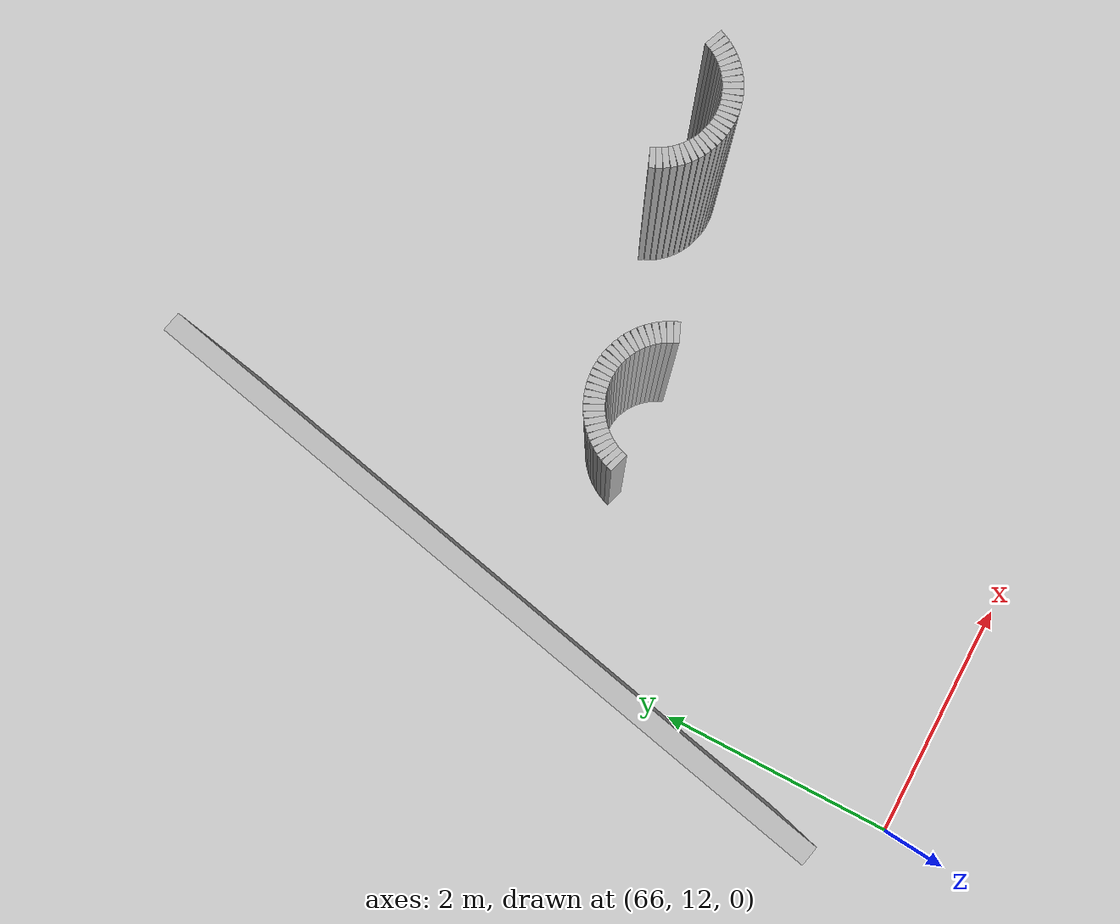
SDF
<sdf version="1.6">
 <model name="sps_1202">
  <static>1</static>
  <allow_auto_disable>0</allow_auto_disable>
  <link name="Wall1943">
   <collision name="collision"><geometry><box><size>0.0452271 0.15 2.5</size></box></geometry></collision>
   <visual name="visual">
    <geometry><box><size>0.0452271 0.15 2.5</size></box></geometry>
    <transparency>0.0</transparency>
   </visual>
   <pose>70.3624 15.9952 1.25 0 0 -1.96559</pose>
  </link>
  <link name="Wall1944">
   <collision name="collision"><geometry><box><size>0.0453724 0.15 2.5</size></box></geometry></collision>
   <visual name="visual">
    <geometry><box><size>0.0453724 0.15 2.5</size></box></geometry>
    <transparency>0.0</transparency>
   </visual>
   <pose>70.3432 15.9542 1.25 0 0 -2.05189</pose>
  </link>
  <link name="Wall1945">
   <collision name="collision"><geometry><box><size>0.0452437 0.15 2.5</size></box></geometry></collision>
   <visual name="visual">
    <geometry><box><size>0.0452437 0.15 2.5</size></box></geometry>
    <transparency>0.0</transparency>
   </visual>
   <pose>70.3205 15.915 1.25 0 0 -2.13597</pose>
  </link>
  <link name="Wall1946">
   <collision name="collision"><geometry><box><size>0.0454753 0.15 2.5</size></box></geometry></collision>
   <visual name="visual">
    <geometry><box><size>0.0454753 0.15 2.5</size></box></geometry>
    <transparency>0.0</transparency>
   </visual>
   <pose>70.2945 15.8779 1.25 0 0 -2.22772</pose>
  </link>
  <link name="Wall1947">
   <collision name="collision"><geometry><box><size>0.0452735 0.15 2.5</size></box></geometry></collision>
   <visual name="visual">
    <geometry><box><size>0.0452735 0.15 2.5</size></box></geometry>
    <transparency>0.0</transparency>
   </visual>
   <pose>70.2654 15.8432 1.25 0 0 -2.31233</pose>
  </link>
  <link name="Wall1948">
   <collision name="collision"><geometry><box><size>0.0454836 0.15 2.5</size></box></geometry></collision>
   <visual name="visual">
    <geometry><box><size>0.0454836 0.15 2.5</size></box></geometry>
    <transparency>0.0</transparency>
   </visual>
   <pose>70.2334 15.8111 1.25 0 0 -2.39701</pose>
  </link>
  <link name="Wall1949">
   <collision name="collision"><geometry><box><size>0.0453153 0.15 2.5</size></box></geometry></collision>
   <visual name="visual">
    <geometry><box><size>0.0453153 0.15 2.5</size></box></geometry>
    <transparency>0.0</transparency>
   </visual>
   <pose>70.1987 15.7819 1.25 0 0 -2.48705</pose>
  </link>
  <link name="Wall1950">
   <collision name="collision"><geometry><box><size>0.0455479 0.15 2.5</size></box></geometry></collision>
   <visual name="visual">
    <geometry><box><size>0.0455479 0.15 2.5</size></box></geometry>
    <transparency>0.0</transparency>
   </visual>
   <pose>70.1615 15.7559 1.25 0 0 -2.57589</pose>
  </link>
  <link name="Wall1951">
   <collision name="collision"><geometry><box><size>0.0452058 0.15 2.5</size></box></geometry></collision>
   <visual name="visual">
    <geometry><box><size>0.0452058 0.15 2.5</size></box></geometry>
    <transparency>0.0</transparency>
   </visual>
   <pose>70.1222 15.7333 1.25 0 0 -2.66466</pose>
  </link>
  <link name="Wall1952">
   <collision name="collision"><geometry><box><size>0.0452834 0.15 2.5</size></box></geometry></collision>
   <visual name="visual">
    <geometry><box><size>0.0452834 0.15 2.5</size></box></geometry>
    <transparency>0.0</transparency>
   </visual>
   <pose>70.0812 15.7142 1.25 0 0 -2.74732</pose>
  </link>
  <link name="Wall1953">
   <collision name="collision"><geometry><box><size>0.0454804 0.15 2.5</size></box></geometry></collision>
   <visual name="visual">
    <geometry><box><size>0.0454804 0.15 2.5</size></box></geometry>
    <transparency>0.0</transparency>
   </visual>
   <pose>70.0386 15.6987 1.25 0 0 -2.83767</pose>
  </link>
  <link name="Wall1954">
   <collision name="collision"><geometry><box><size>0.0452689 0.15 2.5</size></box></geometry></collision>
   <visual name="visual">
    <geometry><box><size>0.0452689 0.15 2.5</size></box></geometry>
    <transparency>0.0</transparency>
   </visual>
   <pose>69.9948 15.687 1.25 0 0 -2.92278</pose>
  </link>
  <link name="Wall1955">
   <collision name="collision"><geometry><box><size>0.0454394 0.15 2.5</size></box></geometry></collision>
   <visual name="visual">
    <geometry><box><size>0.0454394 0.15 2.5</size></box></geometry>
    <transparency>0.0</transparency>
   </visual>
   <pose>69.9502 15.6791 1.25 0 0 -3.00957</pose>
  </link>
  <link name="Wall1956">
   <collision name="collision"><geometry><box><size>0.0453861 0.15 2.5</size></box></geometry></collision>
   <visual name="visual">
    <geometry><box><size>0.0453861 0.15 2.5</size></box></geometry>
    <transparency>0.0</transparency>
   </visual>
   <pose>69.905 15.6752 1.25 0 0 -3.10124</pose>
  </link>
  <link name="Wall1957">
   <collision name="collision"><geometry><box><size>0.0452719 0.15 2.5</size></box></geometry></collision>
   <visual name="visual">
    <geometry><box><size>0.0452719 0.15 2.5</size></box></geometry>
    <transparency>0.0</transparency>
   </visual>
   <pose>69.8597 15.6753 1.25 0 -0 3.09709</pose>
  </link>
  <link name="Wall1958">
   <collision name="collision"><geometry><box><size>0.0453551 0.15 2.5</size></box></geometry></collision>
   <visual name="visual">
    <geometry><box><size>0.0453551 0.15 2.5</size></box></geometry>
    <transparency>0.0</transparency>
   </visual>
   <pose>69.8146 15.6792 1.25 0 -0 3.0134</pose>
  </link>
  <link name="Wall1959">
   <collision name="collision"><geometry><box><size>0.0455072 0.15 2.5</size></box></geometry></collision>
   <visual name="visual">
    <geometry><box><size>0.0455072 0.15 2.5</size></box></geometry>
    <transparency>0.0</transparency>
   </visual>
   <pose>69.7699 15.687 1.25 0 -0 2.92394</pose>
  </link>
  <link name="Wall1960">
   <collision name="collision"><geometry><box><size>0.0453611 0.15 2.5</size></box></geometry></collision>
   <visual name="visual">
    <geometry><box><size>0.0453611 0.15 2.5</size></box></geometry>
    <transparency>0.0</transparency>
   </visual>
   <pose>69.726 15.6988 1.25 0 -0 2.83261</pose>
  </link>
  <link name="Wall1961">
   <collision name="collision"><geometry><box><size>0.0453827 0.15 2.5</size></box></geometry></collision>
   <visual name="visual">
    <geometry><box><size>0.0453827 0.15 2.5</size></box></geometry>
    <transparency>0.0</transparency>
   </visual>
   <pose>69.6834 15.7143 1.25 0 -0 2.75259</pose>
  </link>
  <link name="Wall1962">
   <collision name="collision"><geometry><box><size>0.0453183 0.15 2.5</size></box></geometry></collision>
   <visual name="visual">
    <geometry><box><size>0.0453183 0.15 2.5</size></box></geometry>
    <transparency>0.0</transparency>
   </visual>
   <pose>69.6424 15.7334 1.25 0 -0 2.65987</pose>
  </link>
  <link name="Wall1963">
   <collision name="collision"><geometry><box><size>0.0453092 0.15 2.5</size></box></geometry></collision>
   <visual name="visual">
    <geometry><box><size>0.0453092 0.15 2.5</size></box></geometry>
    <transparency>0.0</transparency>
   </visual>
   <pose>69.6032 15.7561 1.25 0 -0 2.57414</pose>
  </link>
  <link name="Wall1964">
   <collision name="collision"><geometry><box><size>0.0454008 0.15 2.5</size></box></geometry></collision>
   <visual name="visual">
    <geometry><box><size>0.0454008 0.15 2.5</size></box></geometry>
    <transparency>0.0</transparency>
   </visual>
   <pose>69.5661 15.7821 1.25 0 -0 2.4868</pose>
  </link>
  <link name="Wall1965">
   <collision name="collision"><geometry><box><size>0.0453974 0.15 2.5</size></box></geometry></collision>
   <visual name="visual">
    <geometry><box><size>0.0453974 0.15 2.5</size></box></geometry>
    <transparency>0.0</transparency>
   </visual>
   <pose>69.5314 15.8113 1.25 0 -0 2.39709</pose>
  </link>
  <link name="Wall1966">
   <collision name="collision"><geometry><box><size>0.0453598 0.15 2.5</size></box></geometry></collision>
   <visual name="visual">
    <geometry><box><size>0.0453598 0.15 2.5</size></box></geometry>
    <transparency>0.0</transparency>
   </visual>
   <pose>69.4994 15.8434 1.25 0 -0 2.31241</pose>
  </link>
  <link name="Wall1967">
   <collision name="collision"><geometry><box><size>0.0453153 0.15 2.5</size></box></geometry></collision>
   <visual name="visual">
    <geometry><box><size>0.0453153 0.15 2.5</size></box></geometry>
    <transparency>0.0</transparency>
   </visual>
   <pose>69.4702 15.8781 1.25 0 -0 2.22534</pose>
  </link>
  <link name="Wall1968">
   <collision name="collision"><geometry><box><size>0.045342 0.15 2.5</size></box></geometry></collision>
   <visual name="visual">
    <geometry><box><size>0.045342 0.15 2.5</size></box></geometry>
    <transparency>0.0</transparency>
   </visual>
   <pose>69.4442 15.9152 1.25 0 -0 2.13938</pose>
  </link>
  <link name="Wall1969">
   <collision name="collision"><geometry><box><size>0.0453724 0.15 2.5</size></box></geometry></collision>
   <visual name="visual">
    <geometry><box><size>0.0453724 0.15 2.5</size></box></geometry>
    <transparency>0.0</transparency>
   </visual>
   <pose>69.4215 15.9544 1.25 0 -0 2.05189</pose>
  </link>
  <link name="Wall1970">
   <collision name="collision"><geometry><box><size>0.0454525 0.15 2.5</size></box></geometry></collision>
   <visual name="visual">
    <geometry><box><size>0.0454525 0.15 2.5</size></box></geometry>
    <transparency>0.0</transparency>
   </visual>
   <pose>69.4023 15.9955 1.25 0 -0 1.96352</pose>
  </link>
  <link name="Wall2144">
   <collision name="collision"><geometry><box><size>0.0454753 0.15 2.5</size></box></geometry></collision>
   <visual name="visual">
    <geometry><box><size>0.0454753 0.15 2.5</size></box></geometry>
    <transparency>0.0</transparency>
   </visual>
   <pose>68.2187 15.502 1.25 0 0 -0.656923</pose>
  </link>
  <link name="Wall2145">
   <collision name="collision"><geometry><box><size>0.0453148 0.15 2.5</size></box></geometry></collision>
   <visual name="visual">
    <geometry><box><size>0.0453148 0.15 2.5</size></box></geometry>
    <transparency>0.0</transparency>
   </visual>
   <pose>68.2533 15.4728 1.25 0 0 -0.742526</pose>
  </link>
  <link name="Wall2146">
   <collision name="collision"><geometry><box><size>0.0454388 0.15 2.5</size></box></geometry></collision>
   <visual name="visual">
    <geometry><box><size>0.0454388 0.15 2.5</size></box></geometry>
    <transparency>0.0</transparency>
   </visual>
   <pose>68.2855 15.4408 1.25 0 0 -0.825301</pose>
  </link>
  <link name="Wall2147">
   <collision name="collision"><geometry><box><size>0.0453637 0.15 2.5</size></box></geometry></collision>
   <visual name="visual">
    <geometry><box><size>0.0453637 0.15 2.5</size></box></geometry>
    <transparency>0.0</transparency>
   </visual>
   <pose>68.3147 15.4061 1.25 0 0 -0.91707</pose>
  </link>
  <link name="Wall2148">
   <collision name="collision"><geometry><box><size>0.0452437 0.15 2.5</size></box></geometry></collision>
   <visual name="visual">
    <geometry><box><size>0.0452437 0.15 2.5</size></box></geometry>
    <transparency>0.0</transparency>
   </visual>
   <pose>68.3406 15.369 1.25 0 0 -1.00562</pose>
  </link>
  <link name="Wall2149">
   <collision name="collision"><geometry><box><size>0.0455348 0.15 2.5</size></box></geometry></collision>
   <visual name="visual">
    <geometry><box><size>0.0455348 0.15 2.5</size></box></geometry>
    <transparency>0.0</transparency>
   </visual>
   <pose>68.3632 15.3297 1.25 0 0 -1.09156</pose>
  </link>
  <link name="Wall2150">
   <collision name="collision"><geometry><box><size>0.0452271 0.15 2.5</size></box></geometry></collision>
   <visual name="visual">
    <geometry><box><size>0.0452271 0.15 2.5</size></box></geometry>
    <transparency>0.0</transparency>
   </visual>
   <pose>68.3824 15.2886 1.25 0 0 -1.17601</pose>
  </link>
  <link name="Wall2194">
   <collision name="collision"><geometry><box><size>0.0453611 0.15 2.5</size></box></geometry></collision>
   <visual name="visual">
    <geometry><box><size>0.0453611 0.15 2.5</size></box></geometry>
    <transparency>0.0</transparency>
   </visual>
   <pose>67.4069 15.2463 1.25 0 -0 1.26181</pose>
  </link>
  <link name="Wall2195">
   <collision name="collision"><geometry><box><size>0.0453827 0.15 2.5</size></box></geometry></collision>
   <visual name="visual">
    <geometry><box><size>0.0453827 0.15 2.5</size></box></geometry>
    <transparency>0.0</transparency>
   </visual>
   <pose>67.4224 15.2889 1.25 0 -0 1.1818</pose>
  </link>
  <link name="Wall2196">
   <collision name="collision"><geometry><box><size>0.0453724 0.15 2.5</size></box></geometry></collision>
   <visual name="visual">
    <geometry><box><size>0.0453724 0.15 2.5</size></box></geometry>
    <transparency>0.0</transparency>
   </visual>
   <pose>67.4416 15.33 1.25 0 -0 1.0897</pose>
  </link>
  <link name="Wall2197">
   <collision name="collision"><geometry><box><size>0.045342 0.15 2.5</size></box></geometry></collision>
   <visual name="visual">
    <geometry><box><size>0.045342 0.15 2.5</size></box></geometry>
    <transparency>0.0</transparency>
   </visual>
   <pose>67.4643 15.3692 1.25 0 -0 1.00221</pose>
  </link>
  <link name="Wall2198">
   <collision name="collision"><geometry><box><size>0.0453153 0.15 2.5</size></box></geometry></collision>
   <visual name="visual">
    <geometry><box><size>0.0453153 0.15 2.5</size></box></geometry>
    <transparency>0.0</transparency>
   </visual>
   <pose>67.4903 15.4063 1.25 0 -0 0.91625</pose>
  </link>
  <link name="Wall2199">
   <collision name="collision"><geometry><box><size>0.0453186 0.15 2.5</size></box></geometry></collision>
   <visual name="visual">
    <geometry><box><size>0.0453186 0.15 2.5</size></box></geometry>
    <transparency>0.0</transparency>
   </visual>
   <pose>67.5193 15.441 1.25 0 -0 0.830173</pose>
  </link>
  <link name="Wall2200">
   <collision name="collision"><geometry><box><size>0.0454539 0.15 2.5</size></box></geometry></collision>
   <visual name="visual">
    <geometry><box><size>0.0454539 0.15 2.5</size></box></geometry>
    <transparency>0.0</transparency>
   </visual>
   <pose>67.5514 15.473 1.25 0 -0 0.737905</pose>
  </link>
  <link name="Wall2201">
   <collision name="collision"><geometry><box><size>0.0454753 0.15 2.5</size></box></geometry></collision>
   <visual name="visual">
    <geometry><box><size>0.0454753 0.15 2.5</size></box></geometry>
    <transparency>0.0</transparency>
   </visual>
   <pose>67.5863 15.5022 1.25 0 -0 0.656923</pose>
  </link>
  <link name="Wall2202">
   <collision name="collision"><geometry><box><size>0.0452437 0.15 2.5</size></box></geometry></collision>
   <visual name="visual">
    <geometry><box><size>0.0452437 0.15 2.5</size></box></geometry>
    <transparency>0.0</transparency>
   </visual>
   <pose>67.6234 15.5282 1.25 0 -0 0.565177</pose>
  </link>
  <link name="Wall2203">
   <collision name="collision"><geometry><box><size>0.0453183 0.15 2.5</size></box></geometry></collision>
   <visual name="visual">
    <geometry><box><size>0.0453183 0.15 2.5</size></box></geometry>
    <transparency>0.0</transparency>
   </visual>
   <pose>67.6626 15.5508 1.25 0 -0 0.481718</pose>
  </link>
  <link name="Wall2204">
   <collision name="collision"><geometry><box><size>0.0454525 0.15 2.5</size></box></geometry></collision>
   <visual name="visual">
    <geometry><box><size>0.0454525 0.15 2.5</size></box></geometry>
    <transparency>0.0</transparency>
   </visual>
   <pose>67.7036 15.57 1.25 0 -0 0.392725</pose>
  </link>
  <link name="Wall2205">
   <collision name="collision"><geometry><box><size>0.0453057 0.15 2.5</size></box></geometry></collision>
   <visual name="visual">
    <geometry><box><size>0.0453057 0.15 2.5</size></box></geometry>
    <transparency>0.0</transparency>
   </visual>
   <pose>67.7462 15.5855 1.25 0 -0 0.305135</pose>
  </link>
  <link name="Wall2206">
   <collision name="collision"><geometry><box><size>0.0454941 0.15 2.5</size></box></geometry></collision>
   <visual name="visual">
    <geometry><box><size>0.0454941 0.15 2.5</size></box></geometry>
    <transparency>0.0</transparency>
   </visual>
   <pose>67.7901 15.5972 1.25 0 -0 0.216341</pose>
  </link>
  <link name="Wall2207">
   <collision name="collision"><geometry><box><size>0.0453551 0.15 2.5</size></box></geometry></collision>
   <visual name="visual">
    <geometry><box><size>0.0453551 0.15 2.5</size></box></geometry>
    <transparency>0.0</transparency>
   </visual>
   <pose>67.8348 15.605 1.25 0 -0 0.128194</pose>
  </link>
  <link name="Wall2208">
   <collision name="collision"><geometry><box><size>0.0452109 0.15 2.5</size></box></geometry></collision>
   <visual name="visual">
    <geometry><box><size>0.0452109 0.15 2.5</size></box></geometry>
    <transparency>0.0</transparency>
   </visual>
   <pose>67.8798 15.6089 1.25 0 -0 0.0445651</pose>
  </link>
  <link name="Wall2209">
   <collision name="collision"><geometry><box><size>0.0454548 0.15 2.5</size></box></geometry></collision>
   <visual name="visual">
    <geometry><box><size>0.0454548 0.15 2.5</size></box></geometry>
    <transparency>0.0</transparency>
   </visual>
   <pose>67.9251 15.6089 1.25 0 0 -0.0443258</pose>
  </link>
  <link name="Wall2210">
   <collision name="collision"><geometry><box><size>0.0454156 0.15 2.5</size></box></geometry></collision>
   <visual name="visual">
    <geometry><box><size>0.0454156 0.15 2.5</size></box></geometry>
    <transparency>0.0</transparency>
   </visual>
   <pose>67.9704 15.605 1.25 0 0 -0.128022</pose>
  </link>
  <link name="Wall2211">
   <collision name="collision"><geometry><box><size>0.0452955 0.15 2.5</size></box></geometry></collision>
   <visual name="visual">
    <geometry><box><size>0.0452955 0.15 2.5</size></box></geometry>
    <transparency>0.0</transparency>
   </visual>
   <pose>68.015 15.5971 1.25 0 0 -0.221446</pose>
  </link>
  <link name="Wall2212">
   <collision name="collision"><geometry><box><size>0.0453057 0.15 2.5</size></box></geometry></collision>
   <visual name="visual">
    <geometry><box><size>0.0453057 0.15 2.5</size></box></geometry>
    <transparency>0.0</transparency>
   </visual>
   <pose>68.0587 15.5853 1.25 0 0 -0.305135</pose>
  </link>
  <link name="Wall2213">
   <collision name="collision"><geometry><box><size>0.0454525 0.15 2.5</size></box></geometry></collision>
   <visual name="visual">
    <geometry><box><size>0.0454525 0.15 2.5</size></box></geometry>
    <transparency>0.0</transparency>
   </visual>
   <pose>68.1013 15.5698 1.25 0 0 -0.392725</pose>
  </link>
  <link name="Wall2214">
   <collision name="collision"><geometry><box><size>0.0453183 0.15 2.5</size></box></geometry></collision>
   <visual name="visual">
    <geometry><box><size>0.0453183 0.15 2.5</size></box></geometry>
    <transparency>0.0</transparency>
   </visual>
   <pose>68.1424 15.5506 1.25 0 0 -0.481718</pose>
  </link>
  <link name="Wall2215">
   <collision name="collision"><geometry><box><size>0.0452437 0.15 2.5</size></box></geometry></collision>
   <visual name="visual">
    <geometry><box><size>0.0452437 0.15 2.5</size></box></geometry>
    <transparency>0.0</transparency>
   </visual>
   <pose>68.1815 15.528 1.25 0 0 -0.565177</pose>
  </link>
  <link name="Wall2462">
   <collision name="collision"><geometry><box><size>5.57998 0.15 2.5</size></box></geometry></collision>
   <visual name="visual">
    <geometry><box><size>5.57998 0.15 2.5</size></box></geometry>
    <transparency>0.0</transparency>
   </visual>
   <pose>66.2686 15.6603 1.25 0 -0 1.35654</pose>
  </link>
 </model>
</sdf>
